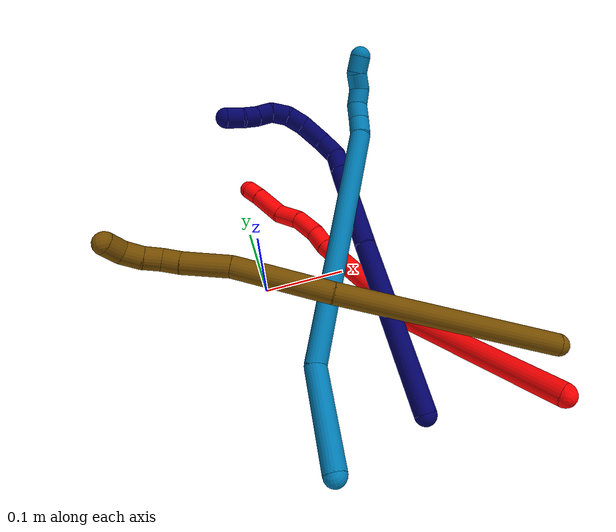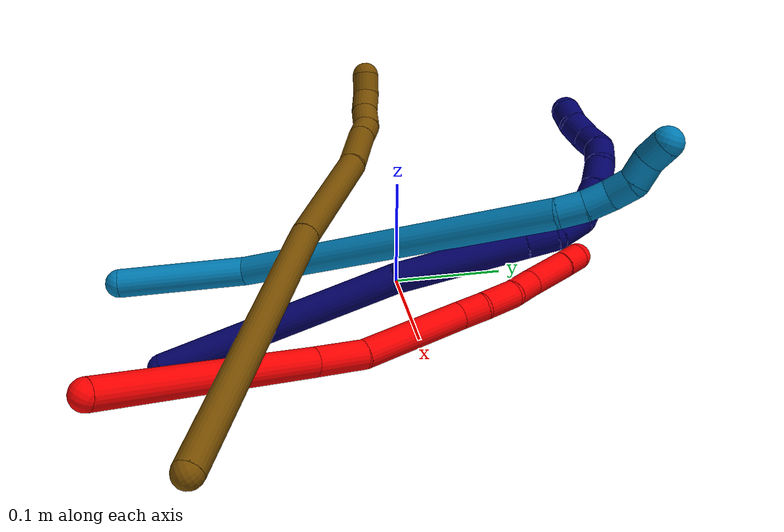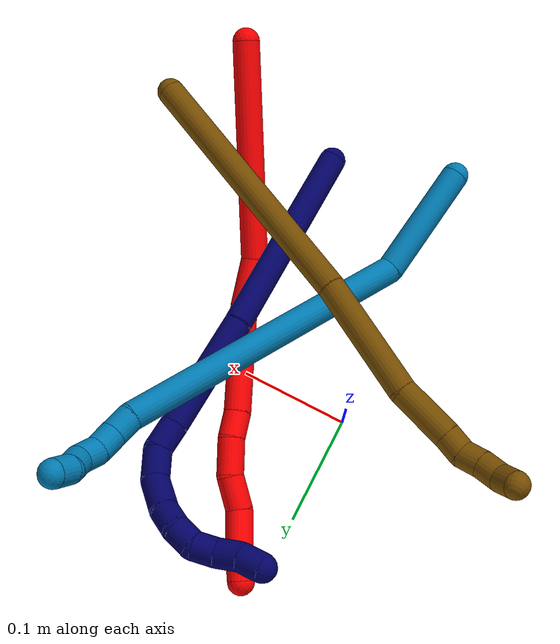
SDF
<sdf version="1.7">
 <world name="default">
  <model name="2">
   <static>0</static>
   <link name="2">
    <collision name="collision-cylinder-e_1_1_4">
     <pose>-0.065321 0.056673 -0.050769 -2.3013 -0.7094 1.38437</pose>
     <geometry><cylinder><radius>0.0125</radius><length>0.200561</length></cylinder></geometry>
     <surface>
      <friction><ode><mu>1.16</mu><mu2>1.16</mu2><slip1>0</slip1><slip2>0</slip2></ode></friction>
      <contact><ode><kp>1e+06</kp><kd>1</kd><max_vel>0</max_vel><min_depth>0.001</min_depth></ode></contact>
     </surface>
    </collision>
    <visual name="visual-cylinder-e_1_1_4">
     <pose>-0.065321 0.056673 -0.050769 -2.3013 -0.7094 1.38437</pose>
     <geometry><cylinder><radius>0.0125</radius><length>0.200561</length></cylinder></geometry>
     <material><ambient>1 0 0 1</ambient></material>
    </visual>
    <collision name="collision-cylinder-e_2_4_5">
     <pose>-0.139579 0.127568 -0.116538 -2.38282 -0.408136 0.957558</pose>
     <geometry><cylinder><radius>0.0125</radius><length>0.045039</length></cylinder></geometry>
     <surface>
      <friction><ode><mu>1.16</mu><mu2>1.16</mu2><slip1>0</slip1><slip2>0</slip2></ode></friction>
      <contact><ode><kp>1e+06</kp><kd>1</kd><max_vel>0</max_vel><min_depth>0.001</min_depth></ode></contact>
     </surface>
    </collision>
    <visual name="visual-cylinder-e_2_4_5">
     <pose>-0.139579 0.127568 -0.116538 -2.38282 -0.408136 0.957558</pose>
     <geometry><cylinder><radius>0.0125</radius><length>0.045039</length></cylinder></geometry>
     <material><ambient>1 0 0 1</ambient></material>
    </visual>
    <collision name="collision-cylinder-e_3_5_6">
     <pose>-0.16822 0.179957 -0.156572 -2.15132 -0.407489 0.730851</pose>
     <geometry><cylinder><radius>0.0125</radius><length>0.099432</length></cylinder></geometry>
     <surface>
      <friction><ode><mu>1.16</mu><mu2>1.16</mu2><slip1>0</slip1><slip2>0</slip2></ode></friction>
      <contact><ode><kp>1e+06</kp><kd>1</kd><max_vel>0</max_vel><min_depth>0.001</min_depth></ode></contact>
     </surface>
    </collision>
    <visual name="visual-cylinder-e_3_5_6">
     <pose>-0.16822 0.179957 -0.156572 -2.15132 -0.407489 0.730851</pose>
     <geometry><cylinder><radius>0.0125</radius><length>0.099432</length></cylinder></geometry>
     <material><ambient>1 0 0 1</ambient></material>
    </visual>
    <collision name="collision-cylinder-e_4_6_7">
     <pose>-0.190658 0.227884 -0.188845 -2.20888 -0.221474 0.434789</pose>
     <geometry><cylinder><radius>0.0125</radius><length>0.024911</length></cylinder></geometry>
     <surface>
      <friction><ode><mu>1.16</mu><mu2>1.16</mu2><slip1>0</slip1><slip2>0</slip2></ode></friction>
      <contact><ode><kp>1e+06</kp><kd>1</kd><max_vel>0</max_vel><min_depth>0.001</min_depth></ode></contact>
     </surface>
    </collision>
    <visual name="visual-cylinder-e_4_6_7">
     <pose>-0.190658 0.227884 -0.188845 -2.20888 -0.221474 0.434789</pose>
     <geometry><cylinder><radius>0.0125</radius><length>0.024911</length></cylinder></geometry>
     <material><ambient>1 0 0 1</ambient></material>
    </visual>
    <collision name="collision-cylinder-e_5_7_8">
     <pose>-0.200514 0.250754 -0.204304 -2.13092 -0.43122 0.753879</pose>
     <geometry><cylinder><radius>0.0125</radius><length>0.034067</length></cylinder></geometry>
     <surface>
      <friction><ode><mu>1.16</mu><mu2>1.16</mu2><slip1>0</slip1><slip2>0</slip2></ode></friction>
      <contact><ode><kp>1e+06</kp><kd>1</kd><max_vel>0</max_vel><min_depth>0.001</min_depth></ode></contact>
     </surface>
    </collision>
    <visual name="visual-cylinder-e_5_7_8">
     <pose>-0.200514 0.250754 -0.204304 -2.13092 -0.43122 0.753879</pose>
     <geometry><cylinder><radius>0.0125</radius><length>0.034067</length></cylinder></geometry>
     <material><ambient>1 0 0 1</ambient></material>
    </visual>
    <collision name="collision-cylinder-e_6_8_9">
     <pose>-0.217951 0.275222 -0.216761 -1.92769 -0.705114 0.974499</pose>
     <geometry><cylinder><radius>0.0125</radius><length>0.031837</length></cylinder></geometry>
     <surface>
      <friction><ode><mu>1.16</mu><mu2>1.16</mu2><slip1>0</slip1><slip2>0</slip2></ode></friction>
      <contact><ode><kp>1e+06</kp><kd>1</kd><max_vel>0</max_vel><min_depth>0.001</min_depth></ode></contact>
     </surface>
    </collision>
    <visual name="visual-cylinder-e_6_8_9">
     <pose>-0.217951 0.275222 -0.216761 -1.92769 -0.705114 0.974499</pose>
     <geometry><cylinder><radius>0.0125</radius><length>0.031837</length></cylinder></geometry>
     <material><ambient>1 0 0 1</ambient></material>
    </visual>
    <collision name="collision-cylinder-e_7_9_10">
     <pose>-0.23626 0.304499 -0.230138 -2.04258 -0.378214 0.605801</pose>
     <geometry><cylinder><radius>0.0125</radius><length>0.043289</length></cylinder></geometry>
     <surface>
      <friction><ode><mu>1.16</mu><mu2>1.16</mu2><slip1>0</slip1><slip2>0</slip2></ode></friction>
      <contact><ode><kp>1e+06</kp><kd>1</kd><max_vel>0</max_vel><min_depth>0.001</min_depth></ode></contact>
     </surface>
    </collision>
    <visual name="visual-cylinder-e_7_9_10">
     <pose>-0.23626 0.304499 -0.230138 -2.04258 -0.378214 0.605801</pose>
     <geometry><cylinder><radius>0.0125</radius><length>0.043289</length></cylinder></geometry>
     <material><ambient>1 0 0 1</ambient></material>
    </visual>
    <collision name="collision-cylinder-e_8_10_2">
     <pose>-0.248867 0.330883 -0.243261 -2.01044 -0.458168 0.704105</pose>
     <geometry><cylinder><radius>0.0125</radius><length>0.020864</length></cylinder></geometry>
     <surface>
      <friction><ode><mu>1.16</mu><mu2>1.16</mu2><slip1>0</slip1><slip2>0</slip2></ode></friction>
      <contact><ode><kp>1e+06</kp><kd>1</kd><max_vel>0</max_vel><min_depth>0.001</min_depth></ode></contact>
     </surface>
    </collision>
    <visual name="visual-cylinder-e_8_10_2">
     <pose>-0.248867 0.330883 -0.243261 -2.01044 -0.458168 0.704105</pose>
     <geometry><cylinder><radius>0.0125</radius><length>0.020864</length></cylinder></geometry>
     <material><ambient>1 0 0 1</ambient></material>
    </visual>
    <collision name="collision-sphere-2">
     <pose>-0.253482 0.339349 -0.247244 0 -0 0</pose>
     <geometry><sphere><radius>0.0125</radius></sphere></geometry>
     <surface>
      <friction><ode><mu>1.16</mu><mu2>1.16</mu2><slip1>0</slip1><slip2>0</slip2></ode></friction>
      <contact><ode><kp>1e+06</kp><kd>1</kd><max_vel>0</max_vel><min_depth>0.001</min_depth></ode></contact>
     </surface>
    </collision>
    <visual name="visual-sphere-2">
     <pose>-0.253482 0.339349 -0.247244 0 -0 0</pose>
     <geometry><sphere><radius>0.0125</radius></sphere></geometry>
     <material><ambient>1 0 0 1</ambient></material>
    </visual>
    <collision name="collision-sphere-10">
     <pose>-0.244253 0.322416 -0.239279 0 -0 0</pose>
     <geometry><sphere><radius>0.0125</radius></sphere></geometry>
     <surface>
      <friction><ode><mu>1.16</mu><mu2>1.16</mu2><slip1>0</slip1><slip2>0</slip2></ode></friction>
      <contact><ode><kp>1e+06</kp><kd>1</kd><max_vel>0</max_vel><min_depth>0.001</min_depth></ode></contact>
     </surface>
    </collision>
    <visual name="visual-sphere-10">
     <pose>-0.244253 0.322416 -0.239279 0 -0 0</pose>
     <geometry><sphere><radius>0.0125</radius></sphere></geometry>
     <material><ambient>1 0 0 1</ambient></material>
    </visual>
    <collision name="collision-sphere-9">
     <pose>-0.228268 0.286581 -0.220996 0 -0 0</pose>
     <geometry><sphere><radius>0.0125</radius></sphere></geometry>
     <surface>
      <friction><ode><mu>1.16</mu><mu2>1.16</mu2><slip1>0</slip1><slip2>0</slip2></ode></friction>
      <contact><ode><kp>1e+06</kp><kd>1</kd><max_vel>0</max_vel><min_depth>0.001</min_depth></ode></contact>
     </surface>
    </collision>
    <visual name="visual-sphere-9">
     <pose>-0.228268 0.286581 -0.220996 0 -0 0</pose>
     <geometry><sphere><radius>0.0125</radius></sphere></geometry>
     <material><ambient>1 0 0 1</ambient></material>
    </visual>
    <collision name="collision-sphere-4">
     <pose>-0.130641 0.113347 -0.101539 0 -0 0</pose>
     <geometry><sphere><radius>0.0125</radius></sphere></geometry>
     <surface>
      <friction><ode><mu>1.16</mu><mu2>1.16</mu2><slip1>0</slip1><slip2>0</slip2></ode></friction>
      <contact><ode><kp>1e+06</kp><kd>1</kd><max_vel>0</max_vel><min_depth>0.001</min_depth></ode></contact>
     </surface>
    </collision>
    <visual name="visual-sphere-4">
     <pose>-0.130641 0.113347 -0.101539 0 -0 0</pose>
     <geometry><sphere><radius>0.0125</radius></sphere></geometry>
     <material><ambient>1 0 0 1</ambient></material>
    </visual>
    <collision name="collision-sphere-1">
     <geometry><sphere><radius>0.0125</radius></sphere></geometry>
     <surface>
      <friction><ode><mu>1.16</mu><mu2>1.16</mu2><slip1>0</slip1><slip2>0</slip2></ode></friction>
      <contact><ode><kp>1e+06</kp><kd>1</kd><max_vel>0</max_vel><min_depth>0.001</min_depth></ode></contact>
     </surface>
    </collision>
    <visual name="visual-sphere-1">
     <geometry><sphere><radius>0.0125</radius></sphere></geometry>
     <material><ambient>1 0 0 1</ambient></material>
    </visual>
    <collision name="collision-sphere-8">
     <pose>-0.207634 0.263864 -0.212525 0 -0 0</pose>
     <geometry><sphere><radius>0.0125</radius></sphere></geometry>
     <surface>
      <friction><ode><mu>1.16</mu><mu2>1.16</mu2><slip1>0</slip1><slip2>0</slip2></ode></friction>
      <contact><ode><kp>1e+06</kp><kd>1</kd><max_vel>0</max_vel><min_depth>0.001</min_depth></ode></contact>
     </surface>
    </collision>
    <visual name="visual-sphere-8">
     <pose>-0.207634 0.263864 -0.212525 0 -0 0</pose>
     <geometry><sphere><radius>0.0125</radius></sphere></geometry>
     <material><ambient>1 0 0 1</ambient></material>
    </visual>
    <collision name="collision-sphere-5">
     <pose>-0.148517 0.14179 -0.131538 0 -0 0</pose>
     <geometry><sphere><radius>0.0125</radius></sphere></geometry>
     <surface>
      <friction><ode><mu>1.16</mu><mu2>1.16</mu2><slip1>0</slip1><slip2>0</slip2></ode></friction>
      <contact><ode><kp>1e+06</kp><kd>1</kd><max_vel>0</max_vel><min_depth>0.001</min_depth></ode></contact>
     </surface>
    </collision>
    <visual name="visual-sphere-5">
     <pose>-0.148517 0.14179 -0.131538 0 -0 0</pose>
     <geometry><sphere><radius>0.0125</radius></sphere></geometry>
     <material><ambient>1 0 0 1</ambient></material>
    </visual>
    <collision name="collision-sphere-6">
     <pose>-0.187922 0.218124 -0.181607 0 -0 0</pose>
     <geometry><sphere><radius>0.0125</radius></sphere></geometry>
     <surface>
      <friction><ode><mu>1.16</mu><mu2>1.16</mu2><slip1>0</slip1><slip2>0</slip2></ode></friction>
      <contact><ode><kp>1e+06</kp><kd>1</kd><max_vel>0</max_vel><min_depth>0.001</min_depth></ode></contact>
     </surface>
    </collision>
    <visual name="visual-sphere-6">
     <pose>-0.187922 0.218124 -0.181607 0 -0 0</pose>
     <geometry><sphere><radius>0.0125</radius></sphere></geometry>
     <material><ambient>1 0 0 1</ambient></material>
    </visual>
    <collision name="collision-sphere-7">
     <pose>-0.193394 0.237645 -0.196083 0 -0 0</pose>
     <geometry><sphere><radius>0.0125</radius></sphere></geometry>
     <surface>
      <friction><ode><mu>1.16</mu><mu2>1.16</mu2><slip1>0</slip1><slip2>0</slip2></ode></friction>
      <contact><ode><kp>1e+06</kp><kd>1</kd><max_vel>0</max_vel><min_depth>0.001</min_depth></ode></contact>
     </surface>
    </collision>
    <visual name="visual-sphere-7">
     <pose>-0.193394 0.237645 -0.196083 0 -0 0</pose>
     <geometry><sphere><radius>0.0125</radius></sphere></geometry>
     <material><ambient>1 0 0 1</ambient></material>
    </visual>
    <inertial>
     <pose>-0.140106 0.156144 -0.129205 0 -0 0</pose>
     <mass>0.5</mass>
     <inertia><ixx>0.000732</ixx><ixy>0</ixy><ixz>0</ixz><iyy>0.000825</iyy><iyz>0</iyz><izz>-2e-06</izz></inertia>
    </inertial>
   </link>
   <pose>0.235162 -0.263741 0.076241 1.08804 -0.821203 -0.218941</pose>
  </model>
  <model name="7">
   <static>0</static>
   <link name="7">
    <collision name="collision-cylinder-e_1_1_4">
     <pose>0.003359 0.09727 -0.023341 -1.8063 0.033569 -0.042575</pose>
     <geometry><cylinder><radius>0.0125</radius><length>0.200176</length></cylinder></geometry>
     <surface>
      <friction><ode><mu>1.16</mu><mu2>1.16</mu2><slip1>0</slip1><slip2>0</slip2></ode></friction>
      <contact><ode><kp>1e+06</kp><kd>1</kd><max_vel>0</max_vel><min_depth>0.001</min_depth></ode></contact>
     </surface>
    </collision>
    <visual name="visual-cylinder-e_1_1_4">
     <pose>0.003359 0.09727 -0.023341 -1.8063 0.033569 -0.042575</pose>
     <geometry><cylinder><radius>0.0125</radius><length>0.200176</length></cylinder></geometry>
     <material><ambient>0.003922 0 0.403922 1</ambient></material>
    </visual>
    <collision name="collision-cylinder-e_2_4_5">
     <pose>0.002827 0.247335 -0.060579 -1.82819 -0.071162 0.092291</pose>
     <geometry><cylinder><radius>0.0125</radius><length>0.109461</length></cylinder></geometry>
     <surface>
      <friction><ode><mu>1.16</mu><mu2>1.16</mu2><slip1>0</slip1><slip2>0</slip2></ode></friction>
      <contact><ode><kp>1e+06</kp><kd>1</kd><max_vel>0</max_vel><min_depth>0.001</min_depth></ode></contact>
     </surface>
    </collision>
    <visual name="visual-cylinder-e_2_4_5">
     <pose>0.002827 0.247335 -0.060579 -1.82819 -0.071162 0.092291</pose>
     <geometry><cylinder><radius>0.0125</radius><length>0.109461</length></cylinder></geometry>
     <material><ambient>0.003922 0 0.403922 1</ambient></material>
    </visual>
    <collision name="collision-cylinder-e_3_5_6">
     <pose>-0.001912 0.312326 -0.07803 -1.85434 -0.066649 0.088818</pose>
     <geometry><cylinder><radius>0.0125</radius><length>0.025466</length></cylinder></geometry>
     <surface>
      <friction><ode><mu>1.16</mu><mu2>1.16</mu2><slip1>0</slip1><slip2>0</slip2></ode></friction>
      <contact><ode><kp>1e+06</kp><kd>1</kd><max_vel>0</max_vel><min_depth>0.001</min_depth></ode></contact>
     </surface>
    </collision>
    <visual name="visual-cylinder-e_3_5_6">
     <pose>-0.001912 0.312326 -0.07803 -1.85434 -0.066649 0.088818</pose>
     <geometry><cylinder><radius>0.0125</radius><length>0.025466</length></cylinder></geometry>
     <material><ambient>0.003922 0 0.403922 1</ambient></material>
    </visual>
    <collision name="collision-cylinder-e_4_6_7">
     <pose>-0.001961 0.337956 -0.079062 -1.38518 0.05846 -0.048509</pose>
     <geometry><cylinder><radius>0.0125</radius><length>0.027382</length></cylinder></geometry>
     <surface>
      <friction><ode><mu>1.16</mu><mu2>1.16</mu2><slip1>0</slip1><slip2>0</slip2></ode></friction>
      <contact><ode><kp>1e+06</kp><kd>1</kd><max_vel>0</max_vel><min_depth>0.001</min_depth></ode></contact>
     </surface>
    </collision>
    <visual name="visual-cylinder-e_4_6_7">
     <pose>-0.001961 0.337956 -0.079062 -1.38518 0.05846 -0.048509</pose>
     <geometry><cylinder><radius>0.0125</radius><length>0.027382</length></cylinder></geometry>
     <material><ambient>0.003922 0 0.403922 1</ambient></material>
    </visual>
    <collision name="collision-cylinder-e_5_7_8">
     <pose>0.007347 0.364774 -0.070786 -1.16481 0.528539 -0.352736</pose>
     <geometry><cylinder><radius>0.0125</radius><length>0.033742</length></cylinder></geometry>
     <surface>
      <friction><ode><mu>1.16</mu><mu2>1.16</mu2><slip1>0</slip1><slip2>0</slip2></ode></friction>
      <contact><ode><kp>1e+06</kp><kd>1</kd><max_vel>0</max_vel><min_depth>0.001</min_depth></ode></contact>
     </surface>
    </collision>
    <visual name="visual-cylinder-e_5_7_8">
     <pose>0.007347 0.364774 -0.070786 -1.16481 0.528539 -0.352736</pose>
     <geometry><cylinder><radius>0.0125</radius><length>0.033742</length></cylinder></geometry>
     <material><ambient>0.003922 0 0.403922 1</ambient></material>
    </visual>
    <collision name="collision-cylinder-e_6_8_9">
     <pose>0.021932 0.385377 -0.059455 -0.913013 0.5877 -0.295068</pose>
     <geometry><cylinder><radius>0.0125</radius><length>0.021922</length></cylinder></geometry>
     <surface>
      <friction><ode><mu>1.16</mu><mu2>1.16</mu2><slip1>0</slip1><slip2>0</slip2></ode></friction>
      <contact><ode><kp>1e+06</kp><kd>1</kd><max_vel>0</max_vel><min_depth>0.001</min_depth></ode></contact>
     </surface>
    </collision>
    <visual name="visual-cylinder-e_6_8_9">
     <pose>0.021932 0.385377 -0.059455 -0.913013 0.5877 -0.295068</pose>
     <geometry><cylinder><radius>0.0125</radius><length>0.021922</length></cylinder></geometry>
     <material><ambient>0.003922 0 0.403922 1</ambient></material>
    </visual>
    <collision name="collision-cylinder-e_7_9_10">
     <pose>0.031874 0.398082 -0.045958 -0.605834 0.381446 -0.120536</pose>
     <geometry><cylinder><radius>0.0125</radius><length>0.020762</length></cylinder></geometry>
     <surface>
      <friction><ode><mu>1.16</mu><mu2>1.16</mu2><slip1>0</slip1><slip2>0</slip2></ode></friction>
      <contact><ode><kp>1e+06</kp><kd>1</kd><max_vel>0</max_vel><min_depth>0.001</min_depth></ode></contact>
     </surface>
    </collision>
    <visual name="visual-cylinder-e_7_9_10">
     <pose>0.031874 0.398082 -0.045958 -0.605834 0.381446 -0.120536</pose>
     <geometry><cylinder><radius>0.0125</radius><length>0.020762</length></cylinder></geometry>
     <material><ambient>0.003922 0 0.403922 1</ambient></material>
    </visual>
    <collision name="collision-cylinder-e_8_10_11">
     <pose>0.038739 0.404212 -0.0285 -0.06736 0.304135 -0.010327</pose>
     <geometry><cylinder><radius>0.0125</radius><length>0.020039</length></cylinder></geometry>
     <surface>
      <friction><ode><mu>1.16</mu><mu2>1.16</mu2><slip1>0</slip1><slip2>0</slip2></ode></friction>
      <contact><ode><kp>1e+06</kp><kd>1</kd><max_vel>0</max_vel><min_depth>0.001</min_depth></ode></contact>
     </surface>
    </collision>
    <visual name="visual-cylinder-e_8_10_11">
     <pose>0.038739 0.404212 -0.0285 -0.06736 0.304135 -0.010327</pose>
     <geometry><cylinder><radius>0.0125</radius><length>0.020039</length></cylinder></geometry>
     <material><ambient>0.003922 0 0.403922 1</ambient></material>
    </visual>
    <collision name="collision-cylinder-e_9_11_12">
     <pose>0.047571 0.404818 -0.010327 0.004338 0.593958 0.001328</pose>
     <geometry><cylinder><radius>0.0125</radius><length>0.02084</length></cylinder></geometry>
     <surface>
      <friction><ode><mu>1.16</mu><mu2>1.16</mu2><slip1>0</slip1><slip2>0</slip2></ode></friction>
      <contact><ode><kp>1e+06</kp><kd>1</kd><max_vel>0</max_vel><min_depth>0.001</min_depth></ode></contact>
     </surface>
    </collision>
    <visual name="visual-cylinder-e_9_11_12">
     <pose>0.047571 0.404818 -0.010327 0.004338 0.593958 0.001328</pose>
     <geometry><cylinder><radius>0.0125</radius><length>0.02084</length></cylinder></geometry>
     <material><ambient>0.003922 0 0.403922 1</ambient></material>
    </visual>
    <collision name="collision-cylinder-e_10_12_2">
     <pose>0.057748 0.407377 0.007053 -0.288616 0.44457 -0.065666</pose>
     <geometry><cylinder><radius>0.0125</radius><length>0.02021</length></cylinder></geometry>
     <surface>
      <friction><ode><mu>1.16</mu><mu2>1.16</mu2><slip1>0</slip1><slip2>0</slip2></ode></friction>
      <contact><ode><kp>1e+06</kp><kd>1</kd><max_vel>0</max_vel><min_depth>0.001</min_depth></ode></contact>
     </surface>
    </collision>
    <visual name="visual-cylinder-e_10_12_2">
     <pose>0.057748 0.407377 0.007053 -0.288616 0.44457 -0.065666</pose>
     <geometry><cylinder><radius>0.0125</radius><length>0.02021</length></cylinder></geometry>
     <material><ambient>0.003922 0 0.403922 1</ambient></material>
    </visual>
    <collision name="collision-sphere-2">
     <pose>0.062094 0.409974 0.015798 0 -0 0</pose>
     <geometry><sphere><radius>0.0125</radius></sphere></geometry>
     <surface>
      <friction><ode><mu>1.16</mu><mu2>1.16</mu2><slip1>0</slip1><slip2>0</slip2></ode></friction>
      <contact><ode><kp>1e+06</kp><kd>1</kd><max_vel>0</max_vel><min_depth>0.001</min_depth></ode></contact>
     </surface>
    </collision>
    <visual name="visual-sphere-2">
     <pose>0.062094 0.409974 0.015798 0 -0 0</pose>
     <geometry><sphere><radius>0.0125</radius></sphere></geometry>
     <material><ambient>0.003922 0 0.403922 1</ambient></material>
    </visual>
    <collision name="collision-sphere-12">
     <pose>0.053402 0.404781 -0.001692 0 -0 0</pose>
     <geometry><sphere><radius>0.0125</radius></sphere></geometry>
     <surface>
      <friction><ode><mu>1.16</mu><mu2>1.16</mu2><slip1>0</slip1><slip2>0</slip2></ode></friction>
      <contact><ode><kp>1e+06</kp><kd>1</kd><max_vel>0</max_vel><min_depth>0.001</min_depth></ode></contact>
     </surface>
    </collision>
    <visual name="visual-sphere-12">
     <pose>0.053402 0.404781 -0.001692 0 -0 0</pose>
     <geometry><sphere><radius>0.0125</radius></sphere></geometry>
     <material><ambient>0.003922 0 0.403922 1</ambient></material>
    </visual>
    <collision name="collision-sphere-11">
     <pose>0.041739 0.404856 -0.018962 0 -0 0</pose>
     <geometry><sphere><radius>0.0125</radius></sphere></geometry>
     <surface>
      <friction><ode><mu>1.16</mu><mu2>1.16</mu2><slip1>0</slip1><slip2>0</slip2></ode></friction>
      <contact><ode><kp>1e+06</kp><kd>1</kd><max_vel>0</max_vel><min_depth>0.001</min_depth></ode></contact>
     </surface>
    </collision>
    <visual name="visual-sphere-11">
     <pose>0.041739 0.404856 -0.018962 0 -0 0</pose>
     <geometry><sphere><radius>0.0125</radius></sphere></geometry>
     <material><ambient>0.003922 0 0.403922 1</ambient></material>
    </visual>
    <collision name="collision-sphere-10">
     <pose>0.035738 0.403569 -0.038038 0 -0 0</pose>
     <geometry><sphere><radius>0.0125</radius></sphere></geometry>
     <surface>
      <friction><ode><mu>1.16</mu><mu2>1.16</mu2><slip1>0</slip1><slip2>0</slip2></ode></friction>
      <contact><ode><kp>1e+06</kp><kd>1</kd><max_vel>0</max_vel><min_depth>0.001</min_depth></ode></contact>
     </surface>
    </collision>
    <visual name="visual-sphere-10">
     <pose>0.035738 0.403569 -0.038038 0 -0 0</pose>
     <geometry><sphere><radius>0.0125</radius></sphere></geometry>
     <material><ambient>0.003922 0 0.403922 1</ambient></material>
    </visual>
    <collision name="collision-sphere-9">
     <pose>0.028009 0.392596 -0.053879 0 -0 0</pose>
     <geometry><sphere><radius>0.0125</radius></sphere></geometry>
     <surface>
      <friction><ode><mu>1.16</mu><mu2>1.16</mu2><slip1>0</slip1><slip2>0</slip2></ode></friction>
      <contact><ode><kp>1e+06</kp><kd>1</kd><max_vel>0</max_vel><min_depth>0.001</min_depth></ode></contact>
     </surface>
    </collision>
    <visual name="visual-sphere-9">
     <pose>0.028009 0.392596 -0.053879 0 -0 0</pose>
     <geometry><sphere><radius>0.0125</radius></sphere></geometry>
     <material><ambient>0.003922 0 0.403922 1</ambient></material>
    </visual>
    <collision name="collision-sphere-4">
     <pose>0.006719 0.194541 -0.046682 0 -0 0</pose>
     <geometry><sphere><radius>0.0125</radius></sphere></geometry>
     <surface>
      <friction><ode><mu>1.16</mu><mu2>1.16</mu2><slip1>0</slip1><slip2>0</slip2></ode></friction>
      <contact><ode><kp>1e+06</kp><kd>1</kd><max_vel>0</max_vel><min_depth>0.001</min_depth></ode></contact>
     </surface>
    </collision>
    <visual name="visual-sphere-4">
     <pose>0.006719 0.194541 -0.046682 0 -0 0</pose>
     <geometry><sphere><radius>0.0125</radius></sphere></geometry>
     <material><ambient>0.003922 0 0.403922 1</ambient></material>
    </visual>
    <collision name="collision-sphere-1">
     <geometry><sphere><radius>0.0125</radius></sphere></geometry>
     <surface>
      <friction><ode><mu>1.16</mu><mu2>1.16</mu2><slip1>0</slip1><slip2>0</slip2></ode></friction>
      <contact><ode><kp>1e+06</kp><kd>1</kd><max_vel>0</max_vel><min_depth>0.001</min_depth></ode></contact>
     </surface>
    </collision>
    <visual name="visual-sphere-1">
     <geometry><sphere><radius>0.0125</radius></sphere></geometry>
     <material><ambient>0.003922 0 0.403922 1</ambient></material>
    </visual>
    <collision name="collision-sphere-8">
     <pose>0.015855 0.378158 -0.065032 0 -0 0</pose>
     <geometry><sphere><radius>0.0125</radius></sphere></geometry>
     <surface>
      <friction><ode><mu>1.16</mu><mu2>1.16</mu2><slip1>0</slip1><slip2>0</slip2></ode></friction>
      <contact><ode><kp>1e+06</kp><kd>1</kd><max_vel>0</max_vel><min_depth>0.001</min_depth></ode></contact>
     </surface>
    </collision>
    <visual name="visual-sphere-8">
     <pose>0.015855 0.378158 -0.065032 0 -0 0</pose>
     <geometry><sphere><radius>0.0125</radius></sphere></geometry>
     <material><ambient>0.003922 0 0.403922 1</ambient></material>
    </visual>
    <collision name="collision-sphere-5">
     <pose>-0.001064 0.300128 -0.074476 0 -0 0</pose>
     <geometry><sphere><radius>0.0125</radius></sphere></geometry>
     <surface>
      <friction><ode><mu>1.16</mu><mu2>1.16</mu2><slip1>0</slip1><slip2>0</slip2></ode></friction>
      <contact><ode><kp>1e+06</kp><kd>1</kd><max_vel>0</max_vel><min_depth>0.001</min_depth></ode></contact>
     </surface>
    </collision>
    <visual name="visual-sphere-5">
     <pose>-0.001064 0.300128 -0.074476 0 -0 0</pose>
     <geometry><sphere><radius>0.0125</radius></sphere></geometry>
     <material><ambient>0.003922 0 0.403922 1</ambient></material>
    </visual>
    <collision name="collision-sphere-6">
     <pose>-0.00276 0.324523 -0.081584 0 -0 0</pose>
     <geometry><sphere><radius>0.0125</radius></sphere></geometry>
     <surface>
      <friction><ode><mu>1.16</mu><mu2>1.16</mu2><slip1>0</slip1><slip2>0</slip2></ode></friction>
      <contact><ode><kp>1e+06</kp><kd>1</kd><max_vel>0</max_vel><min_depth>0.001</min_depth></ode></contact>
     </surface>
    </collision>
    <visual name="visual-sphere-6">
     <pose>-0.00276 0.324523 -0.081584 0 -0 0</pose>
     <geometry><sphere><radius>0.0125</radius></sphere></geometry>
     <material><ambient>0.003922 0 0.403922 1</ambient></material>
    </visual>
    <collision name="collision-sphere-7">
     <pose>-0.001161 0.351389 -0.07654 0 -0 0</pose>
     <geometry><sphere><radius>0.0125</radius></sphere></geometry>
     <surface>
      <friction><ode><mu>1.16</mu><mu2>1.16</mu2><slip1>0</slip1><slip2>0</slip2></ode></friction>
      <contact><ode><kp>1e+06</kp><kd>1</kd><max_vel>0</max_vel><min_depth>0.001</min_depth></ode></contact>
     </surface>
    </collision>
    <visual name="visual-sphere-7">
     <pose>-0.001161 0.351389 -0.07654 0 -0 0</pose>
     <geometry><sphere><radius>0.0125</radius></sphere></geometry>
     <material><ambient>0.003922 0 0.403922 1</ambient></material>
    </visual>
    <inertial>
     <pose>0.010409 0.235086 -0.04149 0 -0 0</pose>
     <mass>0.5</mass>
     <inertia>
      <ixx>0.000788</ixx>
      <ixy>0</ixy>
      <ixz>0</ixz>
      <iyy>-0.000164</iyy>
      <iyz>0</iyz>
      <izz>-0.000797</izz>
     </inertia>
    </inertial>
   </link>
   <pose>0.120656 -0.21663 0.011496 2.43371 -1.20823 -2.23654</pose>
  </model>
  <model name="9">
   <static>0</static>
   <link name="9">
    <collision name="collision-cylinder-e_1_1_4">
     <pose>-0.000643 0.050757 0.022735 -1.14968 -0.011554 0.007485</pose>
     <geometry><cylinder><radius>0.0125</radius><length>0.11124</length></cylinder></geometry>
     <surface>
      <friction><ode><mu>1.16</mu><mu2>1.16</mu2><slip1>0</slip1><slip2>0</slip2></ode></friction>
      <contact><ode><kp>1e+06</kp><kd>1</kd><max_vel>0</max_vel><min_depth>0.001</min_depth></ode></contact>
     </surface>
    </collision>
    <visual name="visual-cylinder-e_1_1_4">
     <pose>-0.000643 0.050757 0.022735 -1.14968 -0.011554 0.007485</pose>
     <geometry><cylinder><radius>0.0125</radius><length>0.11124</length></cylinder></geometry>
     <material><ambient>0 0.490196 0.709804 1</ambient></material>
    </visual>
    <collision name="collision-cylinder-e_2_4_5">
     <pose>0.055874 0.207106 0.123173 -0.936392 0.411151 -0.210121</pose>
     <geometry><cylinder><radius>0.0125</radius><length>0.286038</length></cylinder></geometry>
     <surface>
      <friction><ode><mu>1.16</mu><mu2>1.16</mu2><slip1>0</slip1><slip2>0</slip2></ode></friction>
      <contact><ode><kp>1e+06</kp><kd>1</kd><max_vel>0</max_vel><min_depth>0.001</min_depth></ode></contact>
     </surface>
    </collision>
    <visual name="visual-cylinder-e_2_4_5">
     <pose>0.055874 0.207106 0.123173 -0.936392 0.411151 -0.210121</pose>
     <geometry><cylinder><radius>0.0125</radius><length>0.286038</length></cylinder></geometry>
     <material><ambient>0 0.490196 0.709804 1</ambient></material>
    </visual>
    <collision name="collision-cylinder-e_3_5_6">
     <pose>0.114775 0.321305 0.207201 -0.937031 0.161575 -0.081906</pose>
     <geometry><cylinder><radius>0.0125</radius><length>0.021646</length></cylinder></geometry>
     <surface>
      <friction><ode><mu>1.16</mu><mu2>1.16</mu2><slip1>0</slip1><slip2>0</slip2></ode></friction>
      <contact><ode><kp>1e+06</kp><kd>1</kd><max_vel>0</max_vel><min_depth>0.001</min_depth></ode></contact>
     </surface>
    </collision>
    <visual name="visual-cylinder-e_3_5_6">
     <pose>0.114775 0.321305 0.207201 -0.937031 0.161575 -0.081906</pose>
     <geometry><cylinder><radius>0.0125</radius><length>0.021646</length></cylinder></geometry>
     <material><ambient>0 0.490196 0.709804 1</ambient></material>
    </visual>
    <collision name="collision-cylinder-e_4_6_7">
     <pose>0.118024 0.336957 0.220836 -0.766994 0.147436 -0.059577</pose>
     <geometry><cylinder><radius>0.0125</radius><length>0.020526</length></cylinder></geometry>
     <surface>
      <friction><ode><mu>1.16</mu><mu2>1.16</mu2><slip1>0</slip1><slip2>0</slip2></ode></friction>
      <contact><ode><kp>1e+06</kp><kd>1</kd><max_vel>0</max_vel><min_depth>0.001</min_depth></ode></contact>
     </surface>
    </collision>
    <visual name="visual-cylinder-e_4_6_7">
     <pose>0.118024 0.336957 0.220836 -0.766994 0.147436 -0.059577</pose>
     <geometry><cylinder><radius>0.0125</radius><length>0.020526</length></cylinder></geometry>
     <material><ambient>0 0.490196 0.709804 1</ambient></material>
    </visual>
    <collision name="collision-cylinder-e_5_7_8">
     <pose>0.123677 0.349167 0.235987 -0.582431 0.415721 -0.126265</pose>
     <geometry><cylinder><radius>0.0125</radius><length>0.020529</length></cylinder></geometry>
     <surface>
      <friction><ode><mu>1.16</mu><mu2>1.16</mu2><slip1>0</slip1><slip2>0</slip2></ode></friction>
      <contact><ode><kp>1e+06</kp><kd>1</kd><max_vel>0</max_vel><min_depth>0.001</min_depth></ode></contact>
     </surface>
    </collision>
    <visual name="visual-cylinder-e_5_7_8">
     <pose>0.123677 0.349167 0.235987 -0.582431 0.415721 -0.126265</pose>
     <geometry><cylinder><radius>0.0125</radius><length>0.020529</length></cylinder></geometry>
     <material><ambient>0 0.490196 0.709804 1</ambient></material>
    </visual>
    <collision name="collision-cylinder-e_6_8_9">
     <pose>0.128861 0.355847 0.253661 -0.152847 0.10402 -0.007972</pose>
     <geometry><cylinder><radius>0.0125</radius><length>0.020005</length></cylinder></geometry>
     <surface>
      <friction><ode><mu>1.16</mu><mu2>1.16</mu2><slip1>0</slip1><slip2>0</slip2></ode></friction>
      <contact><ode><kp>1e+06</kp><kd>1</kd><max_vel>0</max_vel><min_depth>0.001</min_depth></ode></contact>
     </surface>
    </collision>
    <visual name="visual-cylinder-e_6_8_9">
     <pose>0.128861 0.355847 0.253661 -0.152847 0.10402 -0.007972</pose>
     <geometry><cylinder><radius>0.0125</radius><length>0.020005</length></cylinder></geometry>
     <material><ambient>0 0.490196 0.709804 1</ambient></material>
    </visual>
    <collision name="collision-cylinder-e_7_9_2">
     <pose>0.134668 0.359886 0.271923 -0.290986 0.496642 -0.074272</pose>
     <geometry><cylinder><radius>0.0125</radius><length>0.020016</length></cylinder></geometry>
     <surface>
      <friction><ode><mu>1.16</mu><mu2>1.16</mu2><slip1>0</slip1><slip2>0</slip2></ode></friction>
      <contact><ode><kp>1e+06</kp><kd>1</kd><max_vel>0</max_vel><min_depth>0.001</min_depth></ode></contact>
     </surface>
    </collision>
    <visual name="visual-cylinder-e_7_9_2">
     <pose>0.134668 0.359886 0.271923 -0.290986 0.496642 -0.074272</pose>
     <geometry><cylinder><radius>0.0125</radius><length>0.020016</length></cylinder></geometry>
     <material><ambient>0 0.490196 0.709804 1</ambient></material>
    </visual>
    <collision name="collision-sphere-2">
     <pose>0.139436 0.362411 0.280352 0 -0 0</pose>
     <geometry><sphere><radius>0.0125</radius></sphere></geometry>
     <surface>
      <friction><ode><mu>1.16</mu><mu2>1.16</mu2><slip1>0</slip1><slip2>0</slip2></ode></friction>
      <contact><ode><kp>1e+06</kp><kd>1</kd><max_vel>0</max_vel><min_depth>0.001</min_depth></ode></contact>
     </surface>
    </collision>
    <visual name="visual-sphere-2">
     <pose>0.139436 0.362411 0.280352 0 -0 0</pose>
     <geometry><sphere><radius>0.0125</radius></sphere></geometry>
     <material><ambient>0 0.490196 0.709804 1</ambient></material>
    </visual>
    <collision name="collision-sphere-9">
     <pose>0.129899 0.357362 0.263494 0 -0 0</pose>
     <geometry><sphere><radius>0.0125</radius></sphere></geometry>
     <surface>
      <friction><ode><mu>1.16</mu><mu2>1.16</mu2><slip1>0</slip1><slip2>0</slip2></ode></friction>
      <contact><ode><kp>1e+06</kp><kd>1</kd><max_vel>0</max_vel><min_depth>0.001</min_depth></ode></contact>
     </surface>
    </collision>
    <visual name="visual-sphere-9">
     <pose>0.129899 0.357362 0.263494 0 -0 0</pose>
     <geometry><sphere><radius>0.0125</radius></sphere></geometry>
     <material><ambient>0 0.490196 0.709804 1</ambient></material>
    </visual>
    <collision name="collision-sphere-4">
     <pose>-0.001285 0.101515 0.04547 0 -0 0</pose>
     <geometry><sphere><radius>0.0125</radius></sphere></geometry>
     <surface>
      <friction><ode><mu>1.16</mu><mu2>1.16</mu2><slip1>0</slip1><slip2>0</slip2></ode></friction>
      <contact><ode><kp>1e+06</kp><kd>1</kd><max_vel>0</max_vel><min_depth>0.001</min_depth></ode></contact>
     </surface>
    </collision>
    <visual name="visual-sphere-4">
     <pose>-0.001285 0.101515 0.04547 0 -0 0</pose>
     <geometry><sphere><radius>0.0125</radius></sphere></geometry>
     <material><ambient>0 0.490196 0.709804 1</ambient></material>
    </visual>
    <collision name="collision-sphere-1">
     <geometry><sphere><radius>0.0125</radius></sphere></geometry>
     <surface>
      <friction><ode><mu>1.16</mu><mu2>1.16</mu2><slip1>0</slip1><slip2>0</slip2></ode></friction>
      <contact><ode><kp>1e+06</kp><kd>1</kd><max_vel>0</max_vel><min_depth>0.001</min_depth></ode></contact>
     </surface>
    </collision>
    <visual name="visual-sphere-1">
     <geometry><sphere><radius>0.0125</radius></sphere></geometry>
     <material><ambient>0 0.490196 0.709804 1</ambient></material>
    </visual>
    <collision name="collision-sphere-8">
     <pose>0.127822 0.354332 0.243829 0 -0 0</pose>
     <geometry><sphere><radius>0.0125</radius></sphere></geometry>
     <surface>
      <friction><ode><mu>1.16</mu><mu2>1.16</mu2><slip1>0</slip1><slip2>0</slip2></ode></friction>
      <contact><ode><kp>1e+06</kp><kd>1</kd><max_vel>0</max_vel><min_depth>0.001</min_depth></ode></contact>
     </surface>
    </collision>
    <visual name="visual-sphere-8">
     <pose>0.127822 0.354332 0.243829 0 -0 0</pose>
     <geometry><sphere><radius>0.0125</radius></sphere></geometry>
     <material><ambient>0 0.490196 0.709804 1</ambient></material>
    </visual>
    <collision name="collision-sphere-5">
     <pose>0.113034 0.312697 0.200875 0 -0 0</pose>
     <geometry><sphere><radius>0.0125</radius></sphere></geometry>
     <surface>
      <friction><ode><mu>1.16</mu><mu2>1.16</mu2><slip1>0</slip1><slip2>0</slip2></ode></friction>
      <contact><ode><kp>1e+06</kp><kd>1</kd><max_vel>0</max_vel><min_depth>0.001</min_depth></ode></contact>
     </surface>
    </collision>
    <visual name="visual-sphere-5">
     <pose>0.113034 0.312697 0.200875 0 -0 0</pose>
     <geometry><sphere><radius>0.0125</radius></sphere></geometry>
     <material><ambient>0 0.490196 0.709804 1</ambient></material>
    </visual>
    <collision name="collision-sphere-6">
     <pose>0.116516 0.329913 0.213527 0 -0 0</pose>
     <geometry><sphere><radius>0.0125</radius></sphere></geometry>
     <surface>
      <friction><ode><mu>1.16</mu><mu2>1.16</mu2><slip1>0</slip1><slip2>0</slip2></ode></friction>
      <contact><ode><kp>1e+06</kp><kd>1</kd><max_vel>0</max_vel><min_depth>0.001</min_depth></ode></contact>
     </surface>
    </collision>
    <visual name="visual-sphere-6">
     <pose>0.116516 0.329913 0.213527 0 -0 0</pose>
     <geometry><sphere><radius>0.0125</radius></sphere></geometry>
     <material><ambient>0 0.490196 0.709804 1</ambient></material>
    </visual>
    <collision name="collision-sphere-7">
     <pose>0.119532 0.344002 0.228145 0 -0 0</pose>
     <geometry><sphere><radius>0.0125</radius></sphere></geometry>
     <surface>
      <friction><ode><mu>1.16</mu><mu2>1.16</mu2><slip1>0</slip1><slip2>0</slip2></ode></friction>
      <contact><ode><kp>1e+06</kp><kd>1</kd><max_vel>0</max_vel><min_depth>0.001</min_depth></ode></contact>
     </surface>
    </collision>
    <visual name="visual-sphere-7">
     <pose>0.119532 0.344002 0.228145 0 -0 0</pose>
     <geometry><sphere><radius>0.0125</radius></sphere></geometry>
     <material><ambient>0 0.490196 0.709804 1</ambient></material>
    </visual>
    <inertial>
     <pose>0.05726 0.200496 0.124282 0 -0 0</pose>
     <mass>0.5</mass>
     <inertia>
      <ixx>0.001521</ixx>
      <ixy>0</ixy>
      <ixz>0</ixz>
      <iyy>0.000977</iyy>
      <iyz>0</iyz>
      <izz>-0.002323</izz>
     </inertia>
    </inertial>
   </link>
   <pose>0.010062 -0.250754 0.030005 -0.335038 -0.232536 -0.155382</pose>
  </model>
  <model name="12">
   <static>0</static>
   <link name="12">
    <collision name="collision-cylinder-e_1_1_4">
     <pose>-0.092924 0.060052 0.060548 -0.781288 -0.82828 0.358152</pose>
     <geometry><cylinder><radius>0.0125</radius><length>0.252248</length></cylinder></geometry>
     <surface>
      <friction><ode><mu>1.16</mu><mu2>1.16</mu2><slip1>0</slip1><slip2>0</slip2></ode></friction>
      <contact><ode><kp>1e+06</kp><kd>1</kd><max_vel>0</max_vel><min_depth>0.001</min_depth></ode></contact>
     </surface>
    </collision>
    <visual name="visual-cylinder-e_1_1_4">
     <pose>-0.092924 0.060052 0.060548 -0.781288 -0.82828 0.358152</pose>
     <geometry><cylinder><radius>0.0125</radius><length>0.252248</length></cylinder></geometry>
     <material><ambient>0.466667 0.301961 0 1</ambient></material>
    </visual>
    <collision name="collision-cylinder-e_2_4_5">
     <pose>-0.223693 0.150182 0.150094 -0.803676 -0.736016 0.324821</pose>
     <geometry><cylinder><radius>0.0125</radius><length>0.112742</length></cylinder></geometry>
     <surface>
      <friction><ode><mu>1.16</mu><mu2>1.16</mu2><slip1>0</slip1><slip2>0</slip2></ode></friction>
      <contact><ode><kp>1e+06</kp><kd>1</kd><max_vel>0</max_vel><min_depth>0.001</min_depth></ode></contact>
     </surface>
    </collision>
    <visual name="visual-cylinder-e_2_4_5">
     <pose>-0.223693 0.150182 0.150094 -0.803676 -0.736016 0.324821</pose>
     <geometry><cylinder><radius>0.0125</radius><length>0.112742</length></cylinder></geometry>
     <material><ambient>0.466667 0.301961 0 1</ambient></material>
    </visual>
    <collision name="collision-cylinder-e_3_5_6">
     <pose>-0.281948 0.194693 0.18828 -1.0039 -0.873136 0.501393</pose>
     <geometry><cylinder><radius>0.0125</radius><length>0.053267</length></cylinder></geometry>
     <surface>
      <friction><ode><mu>1.16</mu><mu2>1.16</mu2><slip1>0</slip1><slip2>0</slip2></ode></friction>
      <contact><ode><kp>1e+06</kp><kd>1</kd><max_vel>0</max_vel><min_depth>0.001</min_depth></ode></contact>
     </surface>
    </collision>
    <visual name="visual-cylinder-e_3_5_6">
     <pose>-0.281948 0.194693 0.18828 -1.0039 -0.873136 0.501393</pose>
     <geometry><cylinder><radius>0.0125</radius><length>0.053267</length></cylinder></geometry>
     <material><ambient>0.466667 0.301961 0 1</ambient></material>
    </visual>
    <collision name="collision-cylinder-e_4_6_7">
     <pose>-0.309785 0.214455 0.20189 -0.87808 -0.820382 0.402887</pose>
     <geometry><cylinder><radius>0.0125</radius><length>0.020308</length></cylinder></geometry>
     <surface>
      <friction><ode><mu>1.16</mu><mu2>1.16</mu2><slip1>0</slip1><slip2>0</slip2></ode></friction>
      <contact><ode><kp>1e+06</kp><kd>1</kd><max_vel>0</max_vel><min_depth>0.001</min_depth></ode></contact>
     </surface>
    </collision>
    <visual name="visual-cylinder-e_4_6_7">
     <pose>-0.309785 0.214455 0.20189 -0.87808 -0.820382 0.402887</pose>
     <geometry><cylinder><radius>0.0125</radius><length>0.020308</length></cylinder></geometry>
     <material><ambient>0.466667 0.301961 0 1</ambient></material>
    </visual>
    <collision name="collision-cylinder-e_5_7_8">
     <pose>-0.326822 0.221698 0.20907 -0.606673 -1.23472 0.437307</pose>
     <geometry><cylinder><radius>0.0125</radius><length>0.02036</length></cylinder></geometry>
     <surface>
      <friction><ode><mu>1.16</mu><mu2>1.16</mu2><slip1>0</slip1><slip2>0</slip2></ode></friction>
      <contact><ode><kp>1e+06</kp><kd>1</kd><max_vel>0</max_vel><min_depth>0.001</min_depth></ode></contact>
     </surface>
    </collision>
    <visual name="visual-cylinder-e_5_7_8">
     <pose>-0.326822 0.221698 0.20907 -0.606673 -1.23472 0.437307</pose>
     <geometry><cylinder><radius>0.0125</radius><length>0.02036</length></cylinder></geometry>
     <material><ambient>0.466667 0.301961 0 1</ambient></material>
    </visual>
    <collision name="collision-cylinder-e_6_8_9">
     <pose>-0.345707 0.225096 0.216404 -0.313622 -1.09234 0.191623</pose>
     <geometry><cylinder><radius>0.0125</radius><length>0.020895</length></cylinder></geometry>
     <surface>
      <friction><ode><mu>1.16</mu><mu2>1.16</mu2><slip1>0</slip1><slip2>0</slip2></ode></friction>
      <contact><ode><kp>1e+06</kp><kd>1</kd><max_vel>0</max_vel><min_depth>0.001</min_depth></ode></contact>
     </surface>
    </collision>
    <visual name="visual-cylinder-e_6_8_9">
     <pose>-0.345707 0.225096 0.216404 -0.313622 -1.09234 0.191623</pose>
     <geometry><cylinder><radius>0.0125</radius><length>0.020895</length></cylinder></geometry>
     <material><ambient>0.466667 0.301961 0 1</ambient></material>
    </visual>
    <collision name="collision-cylinder-e_7_9_2">
     <pose>-0.363486 0.223863 0.225681 0.524001 -1.00255 -0.291798</pose>
     <geometry><cylinder><radius>0.0125</radius><length>0.020179</length></cylinder></geometry>
     <surface>
      <friction><ode><mu>1.16</mu><mu2>1.16</mu2><slip1>0</slip1><slip2>0</slip2></ode></friction>
      <contact><ode><kp>1e+06</kp><kd>1</kd><max_vel>0</max_vel><min_depth>0.001</min_depth></ode></contact>
     </surface>
    </collision>
    <visual name="visual-cylinder-e_7_9_2">
     <pose>-0.363486 0.223863 0.225681 0.524001 -1.00255 -0.291798</pose>
     <geometry><cylinder><radius>0.0125</radius><length>0.020179</length></cylinder></geometry>
     <material><ambient>0.466667 0.301961 0 1</ambient></material>
    </visual>
    <collision name="collision-sphere-2">
     <pose>-0.37199 0.221146 0.230382 0 -0 0</pose>
     <geometry><sphere><radius>0.0125</radius></sphere></geometry>
     <surface>
      <friction><ode><mu>1.16</mu><mu2>1.16</mu2><slip1>0</slip1><slip2>0</slip2></ode></friction>
      <contact><ode><kp>1e+06</kp><kd>1</kd><max_vel>0</max_vel><min_depth>0.001</min_depth></ode></contact>
     </surface>
    </collision>
    <visual name="visual-sphere-2">
     <pose>-0.37199 0.221146 0.230382 0 -0 0</pose>
     <geometry><sphere><radius>0.0125</radius></sphere></geometry>
     <material><ambient>0.466667 0.301961 0 1</ambient></material>
    </visual>
    <collision name="collision-sphere-9">
     <pose>-0.354982 0.22658 0.22098 0 -0 0</pose>
     <geometry><sphere><radius>0.0125</radius></sphere></geometry>
     <surface>
      <friction><ode><mu>1.16</mu><mu2>1.16</mu2><slip1>0</slip1><slip2>0</slip2></ode></friction>
      <contact><ode><kp>1e+06</kp><kd>1</kd><max_vel>0</max_vel><min_depth>0.001</min_depth></ode></contact>
     </surface>
    </collision>
    <visual name="visual-sphere-9">
     <pose>-0.354982 0.22658 0.22098 0 -0 0</pose>
     <geometry><sphere><radius>0.0125</radius></sphere></geometry>
     <material><ambient>0.466667 0.301961 0 1</ambient></material>
    </visual>
    <collision name="collision-sphere-4">
     <pose>-0.185849 0.120105 0.121096 0 -0 0</pose>
     <geometry><sphere><radius>0.0125</radius></sphere></geometry>
     <surface>
      <friction><ode><mu>1.16</mu><mu2>1.16</mu2><slip1>0</slip1><slip2>0</slip2></ode></friction>
      <contact><ode><kp>1e+06</kp><kd>1</kd><max_vel>0</max_vel><min_depth>0.001</min_depth></ode></contact>
     </surface>
    </collision>
    <visual name="visual-sphere-4">
     <pose>-0.185849 0.120105 0.121096 0 -0 0</pose>
     <geometry><sphere><radius>0.0125</radius></sphere></geometry>
     <material><ambient>0.466667 0.301961 0 1</ambient></material>
    </visual>
    <collision name="collision-sphere-1">
     <geometry><sphere><radius>0.0125</radius></sphere></geometry>
     <surface>
      <friction><ode><mu>1.16</mu><mu2>1.16</mu2><slip1>0</slip1><slip2>0</slip2></ode></friction>
      <contact><ode><kp>1e+06</kp><kd>1</kd><max_vel>0</max_vel><min_depth>0.001</min_depth></ode></contact>
     </surface>
    </collision>
    <visual name="visual-sphere-1">
     <geometry><sphere><radius>0.0125</radius></sphere></geometry>
     <material><ambient>0.466667 0.301961 0 1</ambient></material>
    </visual>
    <collision name="collision-sphere-8">
     <pose>-0.336433 0.223612 0.211829 0 -0 0</pose>
     <geometry><sphere><radius>0.0125</radius></sphere></geometry>
     <surface>
      <friction><ode><mu>1.16</mu><mu2>1.16</mu2><slip1>0</slip1><slip2>0</slip2></ode></friction>
      <contact><ode><kp>1e+06</kp><kd>1</kd><max_vel>0</max_vel><min_depth>0.001</min_depth></ode></contact>
     </surface>
    </collision>
    <visual name="visual-sphere-8">
     <pose>-0.336433 0.223612 0.211829 0 -0 0</pose>
     <geometry><sphere><radius>0.0125</radius></sphere></geometry>
     <material><ambient>0.466667 0.301961 0 1</ambient></material>
    </visual>
    <collision name="collision-sphere-5">
     <pose>-0.261537 0.18026 0.179091 0 -0 0</pose>
     <geometry><sphere><radius>0.0125</radius></sphere></geometry>
     <surface>
      <friction><ode><mu>1.16</mu><mu2>1.16</mu2><slip1>0</slip1><slip2>0</slip2></ode></friction>
      <contact><ode><kp>1e+06</kp><kd>1</kd><max_vel>0</max_vel><min_depth>0.001</min_depth></ode></contact>
     </surface>
    </collision>
    <visual name="visual-sphere-5">
     <pose>-0.261537 0.18026 0.179091 0 -0 0</pose>
     <geometry><sphere><radius>0.0125</radius></sphere></geometry>
     <material><ambient>0.466667 0.301961 0 1</ambient></material>
    </visual>
    <collision name="collision-sphere-6">
     <pose>-0.302359 0.209127 0.197468 0 -0 0</pose>
     <geometry><sphere><radius>0.0125</radius></sphere></geometry>
     <surface>
      <friction><ode><mu>1.16</mu><mu2>1.16</mu2><slip1>0</slip1><slip2>0</slip2></ode></friction>
      <contact><ode><kp>1e+06</kp><kd>1</kd><max_vel>0</max_vel><min_depth>0.001</min_depth></ode></contact>
     </surface>
    </collision>
    <visual name="visual-sphere-6">
     <pose>-0.302359 0.209127 0.197468 0 -0 0</pose>
     <geometry><sphere><radius>0.0125</radius></sphere></geometry>
     <material><ambient>0.466667 0.301961 0 1</ambient></material>
    </visual>
    <collision name="collision-sphere-7">
     <pose>-0.317212 0.219784 0.206312 0 -0 0</pose>
     <geometry><sphere><radius>0.0125</radius></sphere></geometry>
     <surface>
      <friction><ode><mu>1.16</mu><mu2>1.16</mu2><slip1>0</slip1><slip2>0</slip2></ode></friction>
      <contact><ode><kp>1e+06</kp><kd>1</kd><max_vel>0</max_vel><min_depth>0.001</min_depth></ode></contact>
     </surface>
    </collision>
    <visual name="visual-sphere-7">
     <pose>-0.317212 0.219784 0.206312 0 -0 0</pose>
     <geometry><sphere><radius>0.0125</radius></sphere></geometry>
     <material><ambient>0.466667 0.301961 0 1</ambient></material>
    </visual>
    <inertial>
     <pose>-0.182364 0.121081 0.119313 0 -0 0</pose>
     <mass>0.5</mass>
     <inertia>
      <ixx>0.001276</ixx>
      <ixy>0</ixy>
      <ixz>0</ixz>
      <iyy>0.00163</iyy>
      <iyz>0</iyz>
      <izz>0.000394</izz>
     </inertia>
    </inertial>
   </link>
   <pose>0.282745 -0.199629 0.039052 -1.00761 0.465542 0.28613</pose>
  </model>
 </world>
</sdf>
